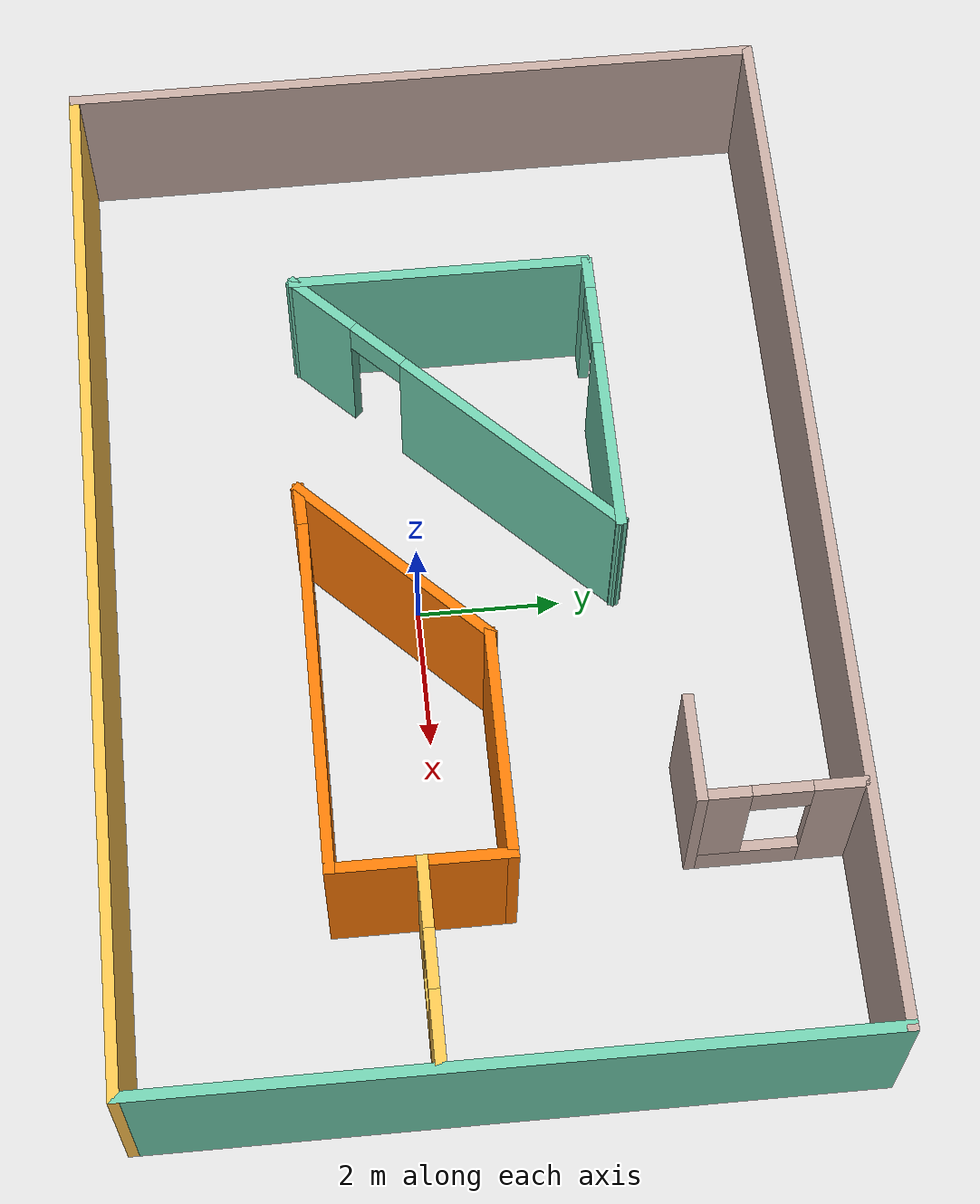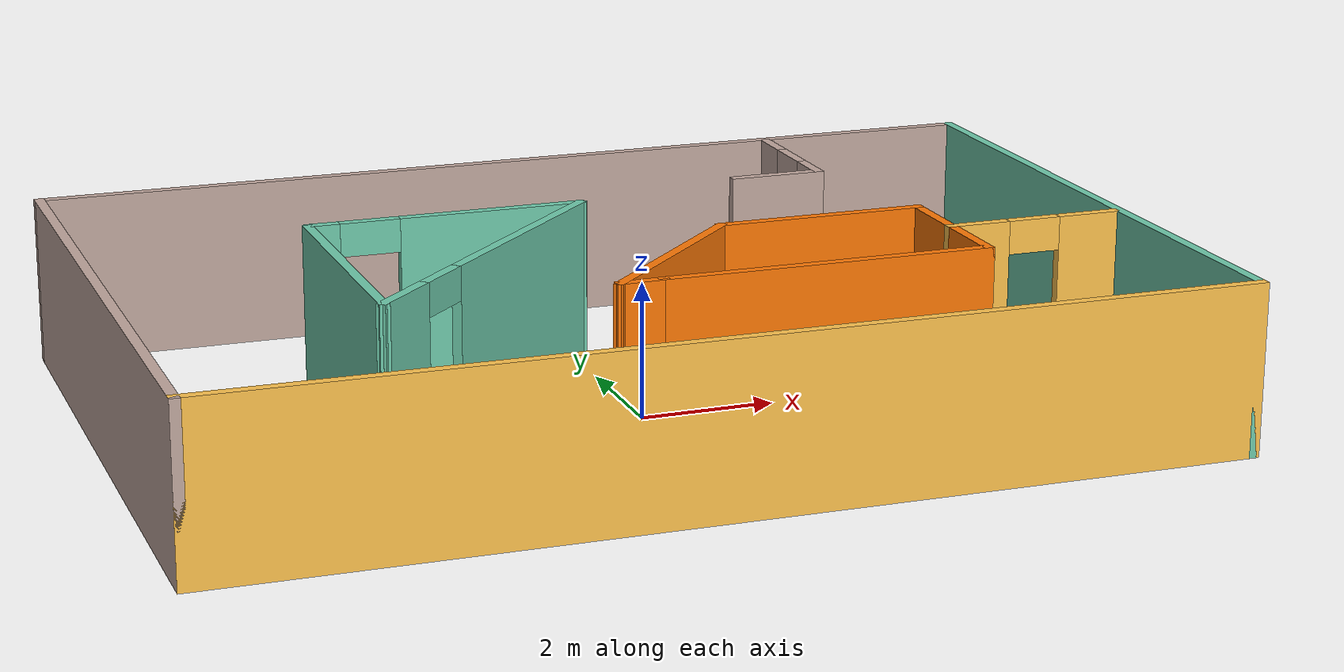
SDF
<?xml version='1.0'?>
<sdf version='1.6'>
  <model name='building-1'>
    <pose frame=''>-0.097355 0.587407 0 0 -0 0</pose>
    <link name='Wall_10'>
      <collision name='Wall_10_Collision'>
        <geometry>
          <box>
            <size>10 0.15 2.5</size>
          </box>
        </geometry>
        <pose frame=''>0 0 1.25 0 -0 0</pose>
      </collision>
      <visual name='Wall_10_Visual'>
        <pose frame=''>0 0 1.25 0 -0 0</pose>
        <geometry>
          <box>
            <size>10 0.15 2.5</size>
          </box>
        </geometry>
        <material>
          <script>
            <uri>file://media/materials/scripts/gazebo.material</uri>
            <name>Gazebo/Grey</name>
          </script>
          <ambient>0.760784 0.662745 0.627451 1</ambient>
        </material>
        <meta>
          <layer>0</layer>
        </meta>
      </visual>
      <pose frame=''>-7.425 0 0 0 0 -1.5708</pose>
    </link>
    <link name='Wall_12'>
      <collision name='Wall_12_Collision'>
        <geometry>
          <box>
            <size>15 0.15 2.5</size>
          </box>
        </geometry>
        <pose frame=''>0 0 1.25 0 -0 0</pose>
      </collision>
      <visual name='Wall_12_Visual'>
        <pose frame=''>0 0 1.25 0 -0 0</pose>
        <geometry>
          <box>
            <size>15 0.15 2.5</size>
          </box>
        </geometry>
        <material>
          <script>
            <uri>file://media/materials/scripts/gazebo.material</uri>
            <name>Gazebo/Grey</name>
          </script>
          <ambient>1 0.764706 0.305882 1</ambient>
        </material>
        <meta>
          <layer>0</layer>
        </meta>
      </visual>
      <pose frame=''>0 -4.925 0 0 -0 0</pose>
    </link>
    <link name='Wall_14'>
      <collision name='Wall_14_Collision'>
        <geometry>
          <box>
            <size>4.25 0.15 2.5</size>
          </box>
        </geometry>
        <pose frame=''>0 0 1.25 0 -0 0</pose>
      </collision>
      <visual name='Wall_14_Visual'>
        <pose frame=''>0 0 1.25 0 -0 0</pose>
        <geometry>
          <box>
            <size>4.25 0.15 2.5</size>
          </box>
        </geometry>
        <material>
          <script>
            <uri>file://media/materials/scripts/gazebo.material</uri>
            <name>Gazebo/Grey</name>
          </script>
          <ambient>0.435294 0.796078 0.67451 1</ambient>
        </material>
        <meta>
          <layer>0</layer>
        </meta>
      </visual>
      <pose frame=''>-4.02449 0.086319 0 0 0 -1.5708</pose>
    </link>
    <link name='Wall_15'>
      <pose frame=''>-1.9562 0.104606 0 0 -0 0.785398</pose>
      <visual name='Wall_15_Visual_0'>
        <pose frame=''>-2.40696 0 1.25 0 -0 0</pose>
        <geometry>
          <box>
            <size>1.18607 0.15 2.5</size>
          </box>
        </geometry>
        <material>
          <script>
            <uri>file://media/materials/scripts/gazebo.material</uri>
            <name>Gazebo/Grey</name>
          </script>
          <ambient>0.435294 0.796078 0.67451 1</ambient>
        </material>
        <meta>
          <layer>0</layer>
        </meta>
      </visual>
      <collision name='Wall_15_Collision_0'>
        <geometry>
          <box>
            <size>1.18607 0.15 2.5</size>
          </box>
        </geometry>
        <pose frame=''>-2.40696 0 1.25 0 -0 0</pose>
      </collision>
      <visual name='Wall_15_Visual_1'>
        <pose frame=''>1.04304 0 1.25 0 -0 0</pose>
        <geometry>
          <box>
            <size>3.91393 0.15 2.5</size>
          </box>
        </geometry>
        <material>
          <script>
            <uri>file://media/materials/scripts/gazebo.material</uri>
            <name>Gazebo/Grey</name>
          </script>
          <ambient>0.435294 0.796078 0.67451 1</ambient>
        </material>
        <meta>
          <layer>0</layer>
        </meta>
      </visual>
      <collision name='Wall_15_Collision_1'>
        <geometry>
          <box>
            <size>3.91393 0.15 2.5</size>
          </box>
        </geometry>
        <pose frame=''>1.04304 0 1.25 0 -0 0</pose>
      </collision>
      <visual name='Wall_15_Visual_2'>
        <pose frame=''>-1.36393 0 2.25 0 -0 0</pose>
        <geometry>
          <box>
            <size>0.9 0.15 0.5</size>
          </box>
        </geometry>
        <material>
          <script>
            <uri>file://media/materials/scripts/gazebo.material</uri>
            <name>Gazebo/Grey</name>
          </script>
          <ambient>0.435294 0.796078 0.67451 1</ambient>
        </material>
        <meta>
          <layer>0</layer>
        </meta>
      </visual>
      <collision name='Wall_15_Collision_2'>
        <geometry>
          <box>
            <size>0.9 0.15 0.5</size>
          </box>
        </geometry>
        <pose frame=''>-1.36393 0 2.25 0 -0 0</pose>
      </collision>
    </link>
    <link name='Wall_16'>
      <pose frame=''>-1.93791 2.17289 0 0 -0 3.14159</pose>
      <visual name='Wall_16_Visual_0'>
        <pose frame=''>-0.699501 0 1.25 0 -0 0</pose>
        <geometry>
          <box>
            <size>2.851 0.15 2.5</size>
          </box>
        </geometry>
        <material>
          <script>
            <uri>file://media/materials/scripts/gazebo.material</uri>
            <name>Gazebo/Grey</name>
          </script>
          <ambient>0.435294 0.796078 0.67451 1</ambient>
        </material>
        <meta>
          <layer>0</layer>
        </meta>
      </visual>
      <collision name='Wall_16_Collision_0'>
        <geometry>
          <box>
            <size>2.851 0.15 2.5</size>
          </box>
        </geometry>
        <pose frame=''>-0.699501 0 1.25 0 -0 0</pose>
      </collision>
      <visual name='Wall_16_Visual_1'>
        <pose frame=''>1.8755 0 1.25 0 -0 0</pose>
        <geometry>
          <box>
            <size>0.499003 0.15 2.5</size>
          </box>
        </geometry>
        <material>
          <script>
            <uri>file://media/materials/scripts/gazebo.material</uri>
            <name>Gazebo/Grey</name>
          </script>
          <ambient>0.435294 0.796078 0.67451 1</ambient>
        </material>
        <meta>
          <layer>0</layer>
        </meta>
      </visual>
      <collision name='Wall_16_Collision_1'>
        <geometry>
          <box>
            <size>0.499003 0.15 2.5</size>
          </box>
        </geometry>
        <pose frame=''>1.8755 0 1.25 0 -0 0</pose>
      </collision>
      <visual name='Wall_16_Visual_2'>
        <pose frame=''>1.176 0 2.25 0 -0 0</pose>
        <geometry>
          <box>
            <size>0.9 0.15 0.5</size>
          </box>
        </geometry>
        <material>
          <script>
            <uri>file://media/materials/scripts/gazebo.material</uri>
            <name>Gazebo/Grey</name>
          </script>
          <ambient>0.435294 0.796078 0.67451 1</ambient>
        </material>
        <meta>
          <layer>0</layer>
        </meta>
      </visual>
      <collision name='Wall_16_Collision_2'>
        <geometry>
          <box>
            <size>0.9 0.15 0.5</size>
          </box>
        </geometry>
        <pose frame=''>1.176 0 2.25 0 -0 0</pose>
      </collision>
    </link>
    <link name='Wall_18'>
      <collision name='Wall_18_Collision'>
        <geometry>
          <box>
            <size>5 0.15 2.5</size>
          </box>
        </geometry>
        <pose frame=''>0 0 1.25 0 -0 0</pose>
      </collision>
      <visual name='Wall_18_Visual'>
        <pose frame=''>0 0 1.25 0 -0 0</pose>
        <geometry>
          <box>
            <size>5 0.15 2.5</size>
          </box>
        </geometry>
        <material>
          <script>
            <uri>file://media/materials/scripts/gazebo.material</uri>
            <name>Gazebo/Grey</name>
          </script>
          <ambient>0.996078 0.47451 0.0196078 1</ambient>
        </material>
        <meta>
          <layer>0</layer>
        </meta>
      </visual>
      <pose frame=''>2.28843 -2.09466 0 0 -0 0</pose>
    </link>
    <link name='Wall_19'>
      <collision name='Wall_19_Collision'>
        <geometry>
          <box>
            <size>2.5 0.15 2.5</size>
          </box>
        </geometry>
        <pose frame=''>0 0 1.25 0 -0 0</pose>
      </collision>
      <visual name='Wall_19_Visual'>
        <pose frame=''>0 0 1.25 0 -0 0</pose>
        <geometry>
          <box>
            <size>2.5 0.15 2.5</size>
          </box>
        </geometry>
        <material>
          <script>
            <uri>file://media/materials/scripts/gazebo.material</uri>
            <name>Gazebo/Grey</name>
          </script>
          <ambient>0.996078 0.47451 0.0196078 1</ambient>
        </material>
        <meta>
          <layer>0</layer>
        </meta>
      </visual>
      <pose frame=''>4.71343 -0.919655 0 0 -0 1.5708</pose>
    </link>
    <link name='Wall_20'>
      <collision name='Wall_20_Collision'>
        <geometry>
          <box>
            <size>3.25 0.15 2.5</size>
          </box>
        </geometry>
        <pose frame=''>0 0 1.25 0 -0 0</pose>
      </collision>
      <visual name='Wall_20_Visual'>
        <pose frame=''>0 0 1.25 0 -0 0</pose>
        <geometry>
          <box>
            <size>3.25 0.15 2.5</size>
          </box>
        </geometry>
        <material>
          <script>
            <uri>file://media/materials/scripts/gazebo.material</uri>
            <name>Gazebo/Grey</name>
          </script>
          <ambient>0.996078 0.47451 0.0196078 1</ambient>
        </material>
        <meta>
          <layer>0</layer>
        </meta>
      </visual>
      <pose frame=''>3.16343 0.255345 0 0 -0 3.14159</pose>
    </link>
    <link name='Wall_21'>
      <collision name='Wall_21_Collision'>
        <geometry>
          <box>
            <size>3.5 0.15 2.5</size>
          </box>
        </geometry>
        <pose frame=''>0 0 1.25 0 -0 0</pose>
      </collision>
      <visual name='Wall_21_Visual'>
        <pose frame=''>0 0 1.25 0 -0 0</pose>
        <geometry>
          <box>
            <size>3.5 0.15 2.5</size>
          </box>
        </geometry>
        <material>
          <script>
            <uri>file://media/materials/scripts/gazebo.material</uri>
            <name>Gazebo/Grey</name>
          </script>
          <ambient>0.996078 0.47451 0.0196078 1</ambient>
        </material>
        <meta>
          <layer>0</layer>
        </meta>
      </visual>
      <pose frame=''>0.42903 -0.929059 0 0 0 -2.35619</pose>
    </link>
    <link name='Wall_22'>
      <collision name='Wall_22_Collision'>
        <geometry>
          <box>
            <size>0.769093 0.15 2.5</size>
          </box>
        </geometry>
        <pose frame=''>0 0 1.25 0 -0 0</pose>
      </collision>
      <visual name='Wall_22_Visual'>
        <pose frame=''>0 0 1.25 0 -0 0</pose>
        <geometry>
          <box>
            <size>0.769093 0.15 2.5</size>
          </box>
        </geometry>
        <material>
          <script>
            <uri>file://media/materials/scripts/gazebo.material</uri>
            <name>Gazebo/Grey</name>
          </script>
          <ambient>0.996078 0.47451 0.0196078 1</ambient>
        </material>
        <meta>
          <layer>0</layer>
        </meta>
      </visual>
      <pose frame=''>-0.44597 -2.10406 0 0 -0 0.030384</pose>
    </link>
    <link name='Wall_24'>
      <pose frame=''>4.16302 3.78499 0 0 0 -1.5708</pose>
      <visual name='Wall_24_Visual_0'>
        <pose frame=''>-0.762265 0 1.25 0 -0 0</pose>
        <geometry>
          <box>
            <size>0.72547 0.15 2.5</size>
          </box>
        </geometry>
        <material>
          <script>
            <uri>file://media/materials/scripts/gazebo.material</uri>
            <name>Gazebo/Grey</name>
          </script>
          <ambient>0.760784 0.662745 0.627451 1</ambient>
        </material>
        <meta>
          <layer>0</layer>
        </meta>
      </visual>
      <collision name='Wall_24_Collision_0'>
        <geometry>
          <box>
            <size>0.72547 0.15 2.5</size>
          </box>
        </geometry>
        <pose frame=''>-0.762265 0 1.25 0 -0 0</pose>
      </collision>
      <visual name='Wall_24_Visual_1'>
        <pose frame=''>0.362735 0 0.25 0 -0 0</pose>
        <geometry>
          <box>
            <size>1.52453 0.15 0.5</size>
          </box>
        </geometry>
        <material>
          <script>
            <uri>file://media/materials/scripts/gazebo.material</uri>
            <name>Gazebo/Grey</name>
          </script>
          <ambient>0.760784 0.662745 0.627451 1</ambient>
        </material>
        <meta>
          <layer>0</layer>
        </meta>
      </visual>
      <collision name='Wall_24_Collision_1'>
        <geometry>
          <box>
            <size>1.52453 0.15 0.5</size>
          </box>
        </geometry>
        <pose frame=''>0.362735 0 0.25 0 -0 0</pose>
      </collision>
      <visual name='Wall_24_Visual_2'>
        <pose frame=''>0.762735 0 1.5 0 -0 0</pose>
        <geometry>
          <box>
            <size>0.72453 0.15 2</size>
          </box>
        </geometry>
        <material>
          <script>
            <uri>file://media/materials/scripts/gazebo.material</uri>
            <name>Gazebo/Grey</name>
          </script>
          <ambient>0.760784 0.662745 0.627451 1</ambient>
        </material>
        <meta>
          <layer>0</layer>
        </meta>
      </visual>
      <collision name='Wall_24_Collision_2'>
        <geometry>
          <box>
            <size>0.72453 0.15 2</size>
          </box>
        </geometry>
        <pose frame=''>0.762735 0 1.5 0 -0 0</pose>
      </collision>
      <visual name='Wall_24_Visual_3'>
        <pose frame=''>0.00047 0 2.25 0 -0 0</pose>
        <geometry>
          <box>
            <size>0.8 0.15 0.5</size>
          </box>
        </geometry>
        <material>
          <script>
            <uri>file://media/materials/scripts/gazebo.material</uri>
            <name>Gazebo/Grey</name>
          </script>
          <ambient>0.760784 0.662745 0.627451 1</ambient>
        </material>
        <meta>
          <layer>0</layer>
        </meta>
      </visual>
      <collision name='Wall_24_Collision_3'>
        <geometry>
          <box>
            <size>0.8 0.15 0.5</size>
          </box>
        </geometry>
        <pose frame=''>0.00047 0 2.25 0 -0 0</pose>
      </collision>
    </link>
    <link name='Wall_25'>
      <collision name='Wall_25_Collision'>
        <geometry>
          <box>
            <size>1.5 0.15 2.5</size>
          </box>
        </geometry>
        <pose frame=''>0 0 1.25 0 -0 0</pose>
      </collision>
      <visual name='Wall_25_Visual'>
        <pose frame=''>0 0 1.25 0 -0 0</pose>
        <geometry>
          <box>
            <size>1.5 0.15 2.5</size>
          </box>
        </geometry>
        <material>
          <script>
            <uri>file://media/materials/scripts/gazebo.material</uri>
            <name>Gazebo/Grey</name>
          </script>
          <ambient>0.760784 0.662745 0.627451 1</ambient>
        </material>
        <meta>
          <layer>0</layer>
        </meta>
      </visual>
      <pose frame=''>3.48802 2.73499 0 0 -0 3.14159</pose>
    </link>
    <link name='Wall_27'>
      <pose frame=''>6.0119 -0.905409 0 0 -0 0</pose>
      <visual name='Wall_27_Visual_0'>
        <pose frame=''>-0.887616 0 1.25 0 -0 0</pose>
        <geometry>
          <box>
            <size>0.974768 0.15 2.5</size>
          </box>
        </geometry>
        <material>
          <script>
            <uri>file://media/materials/scripts/gazebo.material</uri>
            <name>Gazebo/Grey</name>
          </script>
          <ambient>1 0.764706 0.305882 1</ambient>
        </material>
        <meta>
          <layer>0</layer>
        </meta>
      </visual>
      <collision name='Wall_27_Collision_0'>
        <geometry>
          <box>
            <size>0.974768 0.15 2.5</size>
          </box>
        </geometry>
        <pose frame=''>-0.887616 0 1.25 0 -0 0</pose>
      </collision>
      <visual name='Wall_27_Visual_1'>
        <pose frame=''>0.487384 0 0.25 0 -0 0</pose>
        <geometry>
          <box>
            <size>1.77523 0.15 0.5</size>
          </box>
        </geometry>
        <material>
          <script>
            <uri>file://media/materials/scripts/gazebo.material</uri>
            <name>Gazebo/Grey</name>
          </script>
          <ambient>1 0.764706 0.305882 1</ambient>
        </material>
        <meta>
          <layer>0</layer>
        </meta>
      </visual>
      <collision name='Wall_27_Collision_1'>
        <geometry>
          <box>
            <size>1.77523 0.15 0.5</size>
          </box>
        </geometry>
        <pose frame=''>0.487384 0 0.25 0 -0 0</pose>
      </collision>
      <visual name='Wall_27_Visual_2'>
        <pose frame=''>0.887384 0 1.5 0 -0 0</pose>
        <geometry>
          <box>
            <size>0.975232 0.15 2</size>
          </box>
        </geometry>
        <material>
          <script>
            <uri>file://media/materials/scripts/gazebo.material</uri>
            <name>Gazebo/Grey</name>
          </script>
          <ambient>1 0.764706 0.305882 1</ambient>
        </material>
        <meta>
          <layer>0</layer>
        </meta>
      </visual>
      <collision name='Wall_27_Collision_2'>
        <geometry>
          <box>
            <size>0.975232 0.15 2</size>
          </box>
        </geometry>
        <pose frame=''>0.887384 0 1.5 0 -0 0</pose>
      </collision>
      <visual name='Wall_27_Visual_3'>
        <pose frame=''>-0.000232 0 2.25 0 -0 0</pose>
        <geometry>
          <box>
            <size>0.8 0.15 0.5</size>
          </box>
        </geometry>
        <material>
          <script>
            <uri>file://media/materials/scripts/gazebo.material</uri>
            <name>Gazebo/Grey</name>
          </script>
          <ambient>1 0.764706 0.305882 1</ambient>
        </material>
        <meta>
          <layer>0</layer>
        </meta>
      </visual>
      <collision name='Wall_27_Collision_3'>
        <geometry>
          <box>
            <size>0.8 0.15 0.5</size>
          </box>
        </geometry>
        <pose frame=''>-0.000232 0 2.25 0 -0 0</pose>
      </collision>
    </link>
    <link name='Wall_6'>
      <collision name='Wall_6_Collision'>
        <geometry>
          <box>
            <size>15 0.15 2.5</size>
          </box>
        </geometry>
        <pose frame=''>0 0 1.25 0 -0 0</pose>
      </collision>
      <visual name='Wall_6_Visual'>
        <pose frame=''>0 0 1.25 0 -0 0</pose>
        <geometry>
          <box>
            <size>15 0.15 2.5</size>
          </box>
        </geometry>
        <material>
          <script>
            <uri>file://media/materials/scripts/gazebo.material</uri>
            <name>Gazebo/Grey</name>
          </script>
          <ambient>0.760784 0.662745 0.627451 1</ambient>
        </material>
        <meta>
          <layer>0</layer>
        </meta>
      </visual>
      <pose frame=''>0 4.925 0 0 -0 0</pose>
    </link>
    <link name='Wall_8'>
      <collision name='Wall_8_Collision'>
        <geometry>
          <box>
            <size>10 0.15 2.5</size>
          </box>
        </geometry>
        <pose frame=''>0 0 1.25 0 -0 0</pose>
      </collision>
      <visual name='Wall_8_Visual'>
        <pose frame=''>0 0 1.25 0 -0 0</pose>
        <geometry>
          <box>
            <size>10 0.15 2.5</size>
          </box>
        </geometry>
        <material>
          <script>
            <uri>file://media/materials/scripts/gazebo.material</uri>
            <name>Gazebo/Grey</name>
          </script>
          <ambient>0.435294 0.796078 0.67451 1</ambient>
        </material>
        <meta>
          <layer>0</layer>
        </meta>
      </visual>
      <pose frame=''>7.425 0 0 0 0 -1.5708</pose>
    </link>
    <static>1</static>
  </model>
</sdf>
